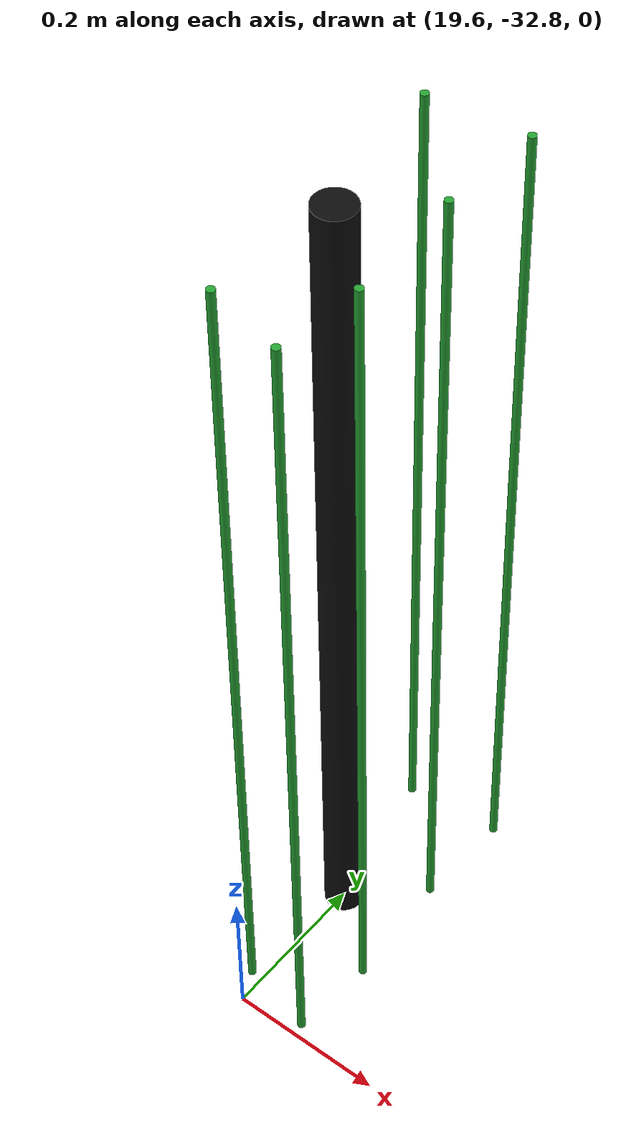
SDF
<sdf version="1.6">
 <world name="default">
  <model name="pole_34">
   <static>1</static>
   <pose>19.6 -32.6 0.575 0 -0 0</pose>
   <link name="link">
    <collision name="collision">
     <geometry><cylinder><length>1.15</length><radius>0.025</radius></cylinder></geometry>
    </collision>
    <visual name="visual">
     <geometry><cylinder><length>1.15</length><radius>0.025</radius></cylinder></geometry>
     <material>
      <script><uri>file://media/materials/scripts/gazebo.material</uri><name>Gazebo/Chrome</name></script>
      <shader type="vertex"><normal_map>__default__</normal_map></shader>
      <emissive>0.1 0.1 0.1 1</emissive>
      <specular>0.01 0.01 0.01 1</specular>
      <ambient>0.5 0.5 0.5 1</ambient>
      <diffuse>0.05 0.05 0.05 1</diffuse>
     </material>
    </visual>
   </link>
  </model>
  <model name="pole_27_clone_clone_242">
   <link name="link">
    <inertial>
     <mass>1</mass>
     <inertia><ixx>1</ixx><ixy>0</ixy><ixz>0</ixz><iyy>1</iyy><iyz>0</iyz><izz>1</izz></inertia>
    </inertial>
    <visual name="visual">
     <geometry><cylinder><length>1.15</length><radius>0.005</radius></cylinder></geometry>
     <material>
      <script><uri>file://media/materials/scripts/gazebo.material</uri><name>Gazebo/Green</name></script>
      <shader type="vertex"><normal_map>__default__</normal_map></shader>
      <emissive>0 0.1 0 1</emissive>
      <specular>0 0.01 0 1</specular>
      <ambient>0 0.5 0 1</ambient>
      <diffuse>0 0.05 0 1</diffuse>
     </material>
    </visual>
    <collision name="collision">
     <geometry><cylinder><radius>0.005</radius><length>1.15</length></cylinder></geometry>
     <surface>
      <friction>
       <ode><mu>1</mu><mu2>1</mu2><fdir1>0 0 0</fdir1><slip1>0</slip1><slip2>0</slip2></ode>
       <torsional>
        <coefficient>1</coefficient>
        <patch_radius>0</patch_radius>
        <surface_radius>0</surface_radius>
        <use_patch_radius>1</use_patch_radius>
        <ode><slip>0</slip></ode>
       </torsional>
      </friction>
      <bounce><restitution_coefficient>0</restitution_coefficient><threshold>1e+06</threshold></bounce>
      <contact>
       <collide_without_contact>0</collide_without_contact>
       <collide_without_contact_bitmask>1</collide_without_contact_bitmask>
       <collide_bitmask>1</collide_bitmask>
       <ode>
        <soft_cfm>0</soft_cfm>
        <soft_erp>0.2</soft_erp>
        <kp>1e+13</kp>
        <kd>1</kd>
        <max_vel>0.01</max_vel>
        <min_depth>0</min_depth>
       </ode>
       <bullet>
        <split_impulse>1</split_impulse>
        <split_impulse_penetration_threshold>-0.01</split_impulse_penetration_threshold>
        <soft_cfm>0</soft_cfm>
        <soft_erp>0.2</soft_erp>
        <kp>1e+13</kp>
        <kd>1</kd>
       </bullet>
      </contact>
     </surface>
    </collision>
   </link>
   <static>1</static>
   <pose>19.6907 -32.6762 0.575 0 -0 0</pose>
  </model>
  <model name="pole_27_clone_clone_243">
   <link name="link">
    <inertial>
     <mass>1</mass>
     <inertia><ixx>1</ixx><ixy>0</ixy><ixz>0</ixz><iyy>1</iyy><iyz>0</iyz><izz>1</izz></inertia>
    </inertial>
    <visual name="visual">
     <geometry><cylinder><length>1.15</length><radius>0.005</radius></cylinder></geometry>
     <material>
      <script><uri>file://media/materials/scripts/gazebo.material</uri><name>Gazebo/Green</name></script>
      <shader type="vertex"><normal_map>__default__</normal_map></shader>
      <emissive>0 0.1 0 1</emissive>
      <specular>0 0.01 0 1</specular>
      <ambient>0 0.5 0 1</ambient>
      <diffuse>0 0.05 0 1</diffuse>
     </material>
    </visual>
    <collision name="collision">
     <geometry><cylinder><radius>0.005</radius><length>1.15</length></cylinder></geometry>
     <surface>
      <friction>
       <ode><mu>1</mu><mu2>1</mu2><fdir1>0 0 0</fdir1><slip1>0</slip1><slip2>0</slip2></ode>
       <torsional>
        <coefficient>1</coefficient>
        <patch_radius>0</patch_radius>
        <surface_radius>0</surface_radius>
        <use_patch_radius>1</use_patch_radius>
        <ode><slip>0</slip></ode>
       </torsional>
      </friction>
      <bounce><restitution_coefficient>0</restitution_coefficient><threshold>1e+06</threshold></bounce>
      <contact>
       <collide_without_contact>0</collide_without_contact>
       <collide_without_contact_bitmask>1</collide_without_contact_bitmask>
       <collide_bitmask>1</collide_bitmask>
       <ode>
        <soft_cfm>0</soft_cfm>
        <soft_erp>0.2</soft_erp>
        <kp>1e+13</kp>
        <kd>1</kd>
        <max_vel>0.01</max_vel>
        <min_depth>0</min_depth>
       </ode>
       <bullet>
        <split_impulse>1</split_impulse>
        <split_impulse_penetration_threshold>-0.01</split_impulse_penetration_threshold>
        <soft_cfm>0</soft_cfm>
        <soft_erp>0.2</soft_erp>
        <kp>1e+13</kp>
        <kd>1</kd>
       </bullet>
      </contact>
     </surface>
    </collision>
   </link>
   <static>1</static>
   <pose>19.6815 -32.5275 0.575 0 -0 0</pose>
  </model>
  <model name="pole_27_clone_clone_244">
   <link name="link">
    <inertial>
     <mass>1</mass>
     <inertia><ixx>1</ixx><ixy>0</ixy><ixz>0</ixz><iyy>1</iyy><iyz>0</iyz><izz>1</izz></inertia>
    </inertial>
    <visual name="visual">
     <geometry><cylinder><length>1.15</length><radius>0.005</radius></cylinder></geometry>
     <material>
      <script><uri>file://media/materials/scripts/gazebo.material</uri><name>Gazebo/Green</name></script>
      <shader type="vertex"><normal_map>__default__</normal_map></shader>
      <emissive>0 0.1 0 1</emissive>
      <specular>0 0.01 0 1</specular>
      <ambient>0 0.5 0 1</ambient>
      <diffuse>0 0.05 0 1</diffuse>
     </material>
    </visual>
    <collision name="collision">
     <geometry><cylinder><radius>0.005</radius><length>1.15</length></cylinder></geometry>
     <surface>
      <friction>
       <ode><mu>1</mu><mu2>1</mu2><fdir1>0 0 0</fdir1><slip1>0</slip1><slip2>0</slip2></ode>
       <torsional>
        <coefficient>1</coefficient>
        <patch_radius>0</patch_radius>
        <surface_radius>0</surface_radius>
        <use_patch_radius>1</use_patch_radius>
        <ode><slip>0</slip></ode>
       </torsional>
      </friction>
      <bounce><restitution_coefficient>0</restitution_coefficient><threshold>1e+06</threshold></bounce>
      <contact>
       <collide_without_contact>0</collide_without_contact>
       <collide_without_contact_bitmask>1</collide_without_contact_bitmask>
       <collide_bitmask>1</collide_bitmask>
       <ode>
        <soft_cfm>0</soft_cfm>
        <soft_erp>0.2</soft_erp>
        <kp>1e+13</kp>
        <kd>1</kd>
        <max_vel>0.01</max_vel>
        <min_depth>0</min_depth>
       </ode>
       <bullet>
        <split_impulse>1</split_impulse>
        <split_impulse_penetration_threshold>-0.01</split_impulse_penetration_threshold>
        <soft_cfm>0</soft_cfm>
        <soft_erp>0.2</soft_erp>
        <kp>1e+13</kp>
        <kd>1</kd>
       </bullet>
      </contact>
     </surface>
    </collision>
   </link>
   <static>1</static>
   <pose>19.6878 -32.4018 0.575 0 -0 0</pose>
  </model>
  <model name="pole_27_clone_clone_245">
   <link name="link">
    <inertial>
     <mass>1</mass>
     <inertia><ixx>1</ixx><ixy>0</ixy><ixz>0</ixz><iyy>1</iyy><iyz>0</iyz><izz>1</izz></inertia>
    </inertial>
    <visual name="visual">
     <geometry><cylinder><length>1.15</length><radius>0.005</radius></cylinder></geometry>
     <material>
      <script><uri>file://media/materials/scripts/gazebo.material</uri><name>Gazebo/Green</name></script>
      <shader type="vertex"><normal_map>__default__</normal_map></shader>
      <emissive>0 0.1 0 1</emissive>
      <specular>0 0.01 0 1</specular>
      <ambient>0 0.5 0 1</ambient>
      <diffuse>0 0.05 0 1</diffuse>
     </material>
    </visual>
    <collision name="collision">
     <geometry><cylinder><radius>0.005</radius><length>1.15</length></cylinder></geometry>
     <surface>
      <friction>
       <ode><mu>1</mu><mu2>1</mu2><fdir1>0 0 0</fdir1><slip1>0</slip1><slip2>0</slip2></ode>
       <torsional>
        <coefficient>1</coefficient>
        <patch_radius>0</patch_radius>
        <surface_radius>0</surface_radius>
        <use_patch_radius>1</use_patch_radius>
        <ode><slip>0</slip></ode>
       </torsional>
      </friction>
      <bounce><restitution_coefficient>0</restitution_coefficient><threshold>1e+06</threshold></bounce>
      <contact>
       <collide_without_contact>0</collide_without_contact>
       <collide_without_contact_bitmask>1</collide_without_contact_bitmask>
       <collide_bitmask>1</collide_bitmask>
       <ode>
        <soft_cfm>0</soft_cfm>
        <soft_erp>0.2</soft_erp>
        <kp>1e+13</kp>
        <kd>1</kd>
        <max_vel>0.01</max_vel>
        <min_depth>0</min_depth>
       </ode>
       <bullet>
        <split_impulse>1</split_impulse>
        <split_impulse_penetration_threshold>-0.01</split_impulse_penetration_threshold>
        <soft_cfm>0</soft_cfm>
        <soft_erp>0.2</soft_erp>
        <kp>1e+13</kp>
        <kd>1</kd>
       </bullet>
      </contact>
     </surface>
    </collision>
   </link>
   <static>1</static>
   <pose>19.6802 -32.784 0.575 0 -0 0</pose>
  </model>
  <model name="pole_27_clone_clone_250">
   <link name="link">
    <inertial>
     <mass>1</mass>
     <inertia><ixx>1</ixx><ixy>0</ixy><ixz>0</ixz><iyy>1</iyy><iyz>0</iyz><izz>1</izz></inertia>
    </inertial>
    <visual name="visual">
     <geometry><cylinder><length>1.15</length><radius>0.005</radius></cylinder></geometry>
     <material>
      <script><uri>file://media/materials/scripts/gazebo.material</uri><name>Gazebo/Green</name></script>
      <shader type="vertex"><normal_map>__default__</normal_map></shader>
      <emissive>0 0.1 0 1</emissive>
      <specular>0 0.01 0 1</specular>
      <ambient>0 0.5 0 1</ambient>
      <diffuse>0 0.05 0 1</diffuse>
     </material>
    </visual>
    <collision name="collision">
     <geometry><cylinder><radius>0.005</radius><length>1.15</length></cylinder></geometry>
     <surface>
      <friction>
       <ode><mu>1</mu><mu2>1</mu2><fdir1>0 0 0</fdir1><slip1>0</slip1><slip2>0</slip2></ode>
       <torsional>
        <coefficient>1</coefficient>
        <patch_radius>0</patch_radius>
        <surface_radius>0</surface_radius>
        <use_patch_radius>1</use_patch_radius>
        <ode><slip>0</slip></ode>
       </torsional>
      </friction>
      <bounce><restitution_coefficient>0</restitution_coefficient><threshold>1e+06</threshold></bounce>
      <contact>
       <collide_without_contact>0</collide_without_contact>
       <collide_without_contact_bitmask>1</collide_without_contact_bitmask>
       <collide_bitmask>1</collide_bitmask>
       <ode>
        <soft_cfm>0</soft_cfm>
        <soft_erp>0.2</soft_erp>
        <kp>1e+13</kp>
        <kd>1</kd>
        <max_vel>0.01</max_vel>
        <min_depth>0</min_depth>
       </ode>
       <bullet>
        <split_impulse>1</split_impulse>
        <split_impulse_penetration_threshold>-0.01</split_impulse_penetration_threshold>
        <soft_cfm>0</soft_cfm>
        <soft_erp>0.2</soft_erp>
        <kp>1e+13</kp>
        <kd>1</kd>
       </bullet>
      </contact>
     </surface>
    </collision>
   </link>
   <static>1</static>
   <pose>19.5661 -32.4159 0.575 0 -0 0</pose>
  </model>
  <model name="pole_27_clone_clone_251">
   <link name="link">
    <inertial>
     <mass>1</mass>
     <inertia><ixx>1</ixx><ixy>0</ixy><ixz>0</ixz><iyy>1</iyy><iyz>0</iyz><izz>1</izz></inertia>
    </inertial>
    <visual name="visual">
     <geometry><cylinder><length>1.15</length><radius>0.005</radius></cylinder></geometry>
     <material>
      <script><uri>file://media/materials/scripts/gazebo.material</uri><name>Gazebo/Green</name></script>
      <shader type="vertex"><normal_map>__default__</normal_map></shader>
      <emissive>0 0.1 0 1</emissive>
      <specular>0 0.01 0 1</specular>
      <ambient>0 0.5 0 1</ambient>
      <diffuse>0 0.05 0 1</diffuse>
     </material>
    </visual>
    <collision name="collision">
     <geometry><cylinder><radius>0.005</radius><length>1.15</length></cylinder></geometry>
     <surface>
      <friction>
       <ode><mu>1</mu><mu2>1</mu2><fdir1>0 0 0</fdir1><slip1>0</slip1><slip2>0</slip2></ode>
       <torsional>
        <coefficient>1</coefficient>
        <patch_radius>0</patch_radius>
        <surface_radius>0</surface_radius>
        <use_patch_radius>1</use_patch_radius>
        <ode><slip>0</slip></ode>
       </torsional>
      </friction>
      <bounce><restitution_coefficient>0</restitution_coefficient><threshold>1e+06</threshold></bounce>
      <contact>
       <collide_without_contact>0</collide_without_contact>
       <collide_without_contact_bitmask>1</collide_without_contact_bitmask>
       <collide_bitmask>1</collide_bitmask>
       <ode>
        <soft_cfm>0</soft_cfm>
        <soft_erp>0.2</soft_erp>
        <kp>1e+13</kp>
        <kd>1</kd>
        <max_vel>0.01</max_vel>
        <min_depth>0</min_depth>
       </ode>
       <bullet>
        <split_impulse>1</split_impulse>
        <split_impulse_penetration_threshold>-0.01</split_impulse_penetration_threshold>
        <soft_cfm>0</soft_cfm>
        <soft_erp>0.2</soft_erp>
        <kp>1e+13</kp>
        <kd>1</kd>
       </bullet>
      </contact>
     </surface>
    </collision>
   </link>
   <static>1</static>
   <pose>19.5838 -32.7624 0.575 0 -0 0</pose>
  </model>
 </world>
</sdf>
